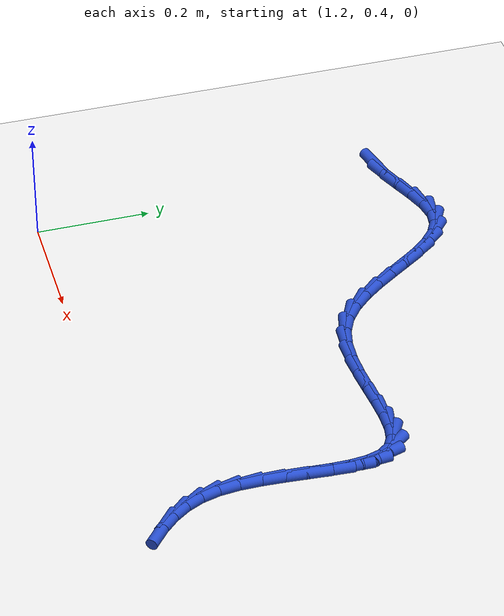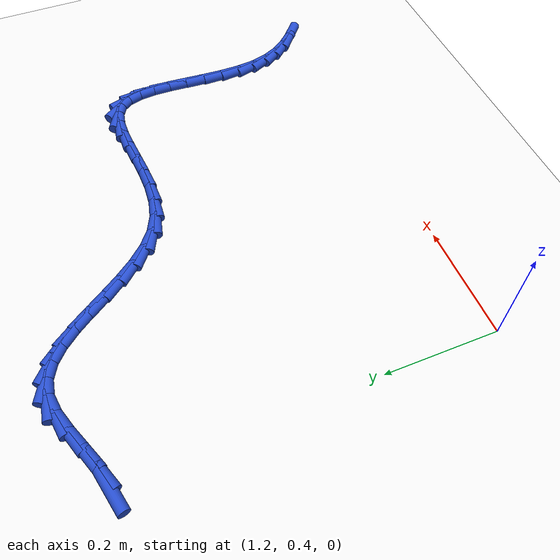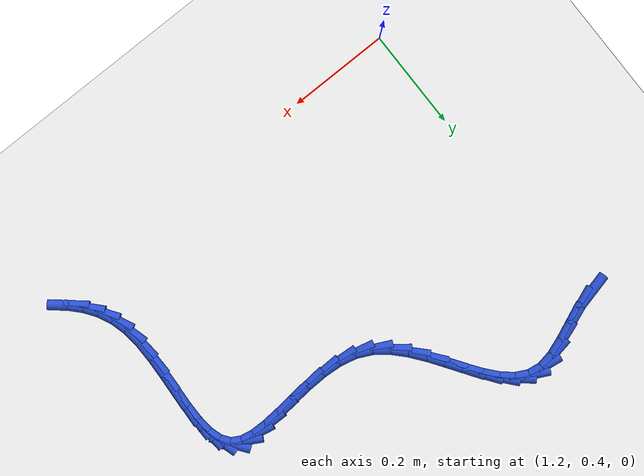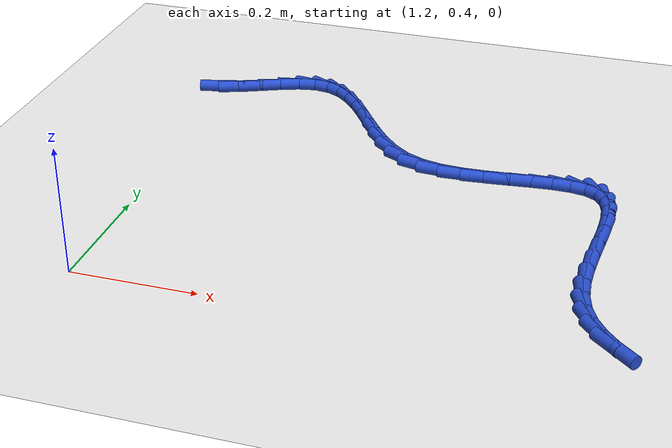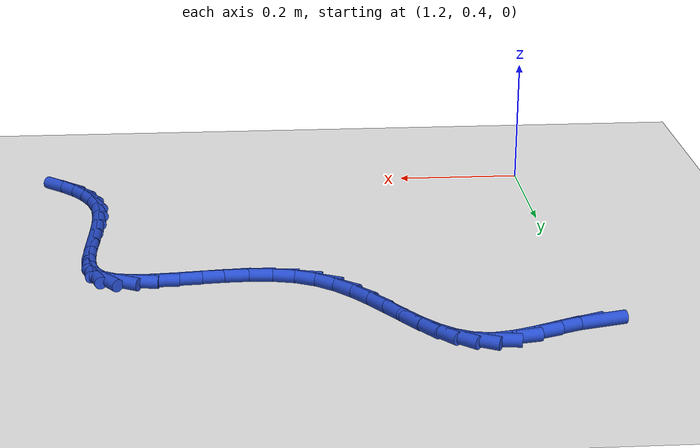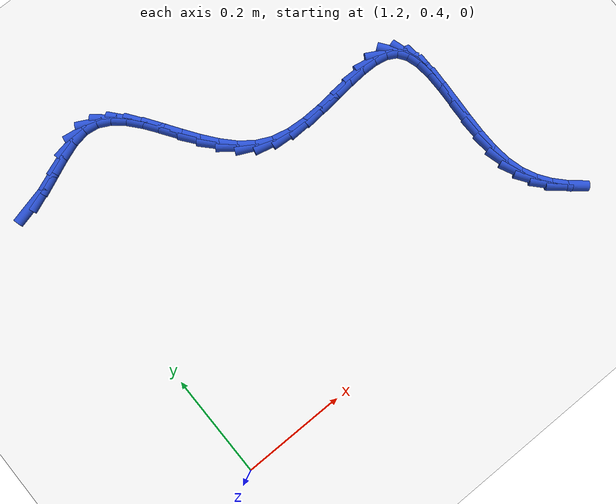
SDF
<sdf version="1.6">
 <world name="default">
  <model name="ground_plane">
   <static>1</static>
   <link name="link">
    <collision name="collision">
     <geometry><plane><normal>0 0 1</normal><size>100 100</size></plane></geometry>
     <surface><friction><ode><mu>100</mu><mu2>50</mu2></ode></friction></surface>
    </collision>
    <visual name="visual">
     <cast_shadows>0</cast_shadows>
     <geometry><plane><normal>0 0 1</normal><size>100 100</size></plane></geometry>
     <material>
      <script><uri>file://media/materials/scripts/gazebo.material</uri><name>Gazebo/WhiteGlow</name></script>
     </material>
    </visual>
   </link>
  </model>
  <model name="line">
   <link name="link_58">
    <pose>1.1863315612279193 1.02608378913244 0.01 0 1.57 0.2471443779884811</pose>
    <collision name="collision">
     <geometry><cylinder><radius>0.01</radius><length>0.08</length></cylinder></geometry>
    </collision>
    <visual name="visual">
     <material>
      <script><name>Gazebo/Blue</name><uri>file://media/materials/scripts/gazebo.material</uri></script>
     </material>
     <geometry><cylinder><radius>0.01</radius><length>0.08</length></cylinder></geometry>
    </visual>
   </link>
   <link name="link_59">
    <pose>1.2179585491378866 1.0340633516257896 0.01 0 1.57 0.37794571140664307</pose>
    <collision name="collision">
     <geometry><cylinder><radius>0.01</radius><length>0.08</length></cylinder></geometry>
    </collision>
    <visual name="visual">
     <material>
      <script><name>Gazebo/Blue</name><uri>file://media/materials/scripts/gazebo.material</uri></script>
     </material>
     <geometry><cylinder><radius>0.01</radius><length>0.08</length></cylinder></geometry>
    </visual>
   </link>
   <link name="link_60">
    <pose>1.251209522628642 1.0472650740997405 0.01 0 1.57 0.4084316908271969</pose>
    <collision name="collision">
     <geometry><cylinder><radius>0.01</radius><length>0.08</length></cylinder></geometry>
    </collision>
    <visual name="visual">
     <material>
      <script><name>Gazebo/Blue</name><uri>file://media/materials/scripts/gazebo.material</uri></script>
     </material>
     <geometry><cylinder><radius>0.01</radius><length>0.08</length></cylinder></geometry>
    </visual>
   </link>
   <link name="link_61">
    <pose>1.2848036581786273 1.0618035377173545 0.01 0 1.57 0.3518697404255531</pose>
    <collision name="collision">
     <geometry><cylinder><radius>0.01</radius><length>0.08</length></cylinder></geometry>
    </collision>
    <visual name="visual">
     <material>
      <script><name>Gazebo/Blue</name><uri>file://media/materials/scripts/gazebo.material</uri></script>
     </material>
     <geometry><cylinder><radius>0.01</radius><length>0.08</length></cylinder></geometry>
    </visual>
   </link>
   <link name="link_62">
    <pose>1.3174601322662831 1.073793323641692 0.01 0 1.57 0.1805374693753123</pose>
    <collision name="collision">
     <geometry><cylinder><radius>0.01</radius><length>0.08</length></cylinder></geometry>
    </collision>
    <visual name="visual">
     <material>
      <script><name>Gazebo/Blue</name><uri>file://media/materials/scripts/gazebo.material</uri></script>
     </material>
     <geometry><cylinder><radius>0.01</radius><length>0.08</length></cylinder></geometry>
    </visual>
   </link>
   <link name="link_63">
    <pose>1.347898121370051 1.079349013035815 0.01 0 1.57 -0.1399753026989773</pose>
    <collision name="collision">
     <geometry><cylinder><radius>0.01</radius><length>0.08</length></cylinder></geometry>
    </collision>
    <visual name="visual">
     <material>
      <script><name>Gazebo/Blue</name><uri>file://media/materials/scripts/gazebo.material</uri></script>
     </material>
     <geometry><cylinder><radius>0.01</radius><length>0.08</length></cylinder></geometry>
    </visual>
   </link>
   <link name="link_64">
    <pose>1.3751642141030875 1.0755073103481927 0.01 0 1.57 -0.47209147640019355</pose>
    <collision name="collision">
     <geometry><cylinder><radius>0.01</radius><length>0.08</length></cylinder></geometry>
    </collision>
    <visual name="visual">
     <material>
      <script><name>Gazebo/Blue</name><uri>file://media/materials/scripts/gazebo.material</uri></script>
     </material>
     <geometry><cylinder><radius>0.01</radius><length>0.08</length></cylinder></geometry>
    </visual>
   </link>
   <link name="link_65">
    <pose>1.3996235174089613 1.0630183940430478 0.01 0 1.57 -0.7161756071235347</pose>
    <collision name="collision">
     <geometry><cylinder><radius>0.01</radius><length>0.08</length></cylinder></geometry>
    </collision>
    <visual name="visual">
     <material>
      <script><name>Gazebo/Blue</name><uri>file://media/materials/scripts/gazebo.material</uri></script>
     </material>
     <geometry><cylinder><radius>0.01</radius><length>0.08</length></cylinder></geometry>
    </visual>
   </link>
   <link name="link_66">
    <pose>1.4219730002590492 1.0435670985455088 0.01 0 1.57 -0.868251299276987</pose>
    <collision name="collision">
     <geometry><cylinder><radius>0.01</radius><length>0.08</length></cylinder></geometry>
    </collision>
    <visual name="visual">
     <material>
      <script><name>Gazebo/Blue</name><uri>file://media/materials/scripts/gazebo.material</uri></script>
     </material>
     <geometry><cylinder><radius>0.01</radius><length>0.08</length></cylinder></geometry>
    </visual>
   </link>
   <link name="link_67">
    <pose>1.4429096316284817 1.0188382582912772 0.01 0 1.57 -0.9507556594779019</pose>
    <collision name="collision">
     <geometry><cylinder><radius>0.01</radius><length>0.08</length></cylinder></geometry>
    </collision>
    <visual name="visual">
     <material>
      <script><name>Gazebo/Blue</name><uri>file://media/materials/scripts/gazebo.material</uri></script>
     </material>
     <geometry><cylinder><radius>0.01</radius><length>0.08</length></cylinder></geometry>
    </visual>
   </link>
   <link name="link_68">
    <pose>1.463130380492391 0.9905167077160554 0.01 0 1.57 -0.9816750197854265</pose>
    <collision name="collision">
     <geometry><cylinder><radius>0.01</radius><length>0.08</length></cylinder></geometry>
    </collision>
    <visual name="visual">
     <material>
      <script><name>Gazebo/Blue</name><uri>file://media/materials/scripts/gazebo.material</uri></script>
     </material>
     <geometry><cylinder><radius>0.01</radius><length>0.08</length></cylinder></geometry>
    </visual>
   </link>
   <link name="link_69">
    <pose>1.4833322158259066 0.9602872812555447 0.01 0 1.57 -0.9697628112660459</pose>
    <collision name="collision">
     <geometry><cylinder><radius>0.01</radius><length>0.08</length></cylinder></geometry>
    </collision>
    <visual name="visual">
     <material>
      <script><name>Gazebo/Blue</name><uri>file://media/materials/scripts/gazebo.material</uri></script>
     </material>
     <geometry><cylinder><radius>0.01</radius><length>0.08</length></cylinder></geometry>
    </visual>
   </link>
   <link name="link_70">
    <pose>1.5042121066041605 0.9298348133454466 0.01 0 1.57 -0.916089729334342</pose>
    <collision name="collision">
     <geometry><cylinder><radius>0.01</radius><length>0.08</length></cylinder></geometry>
    </collision>
    <visual name="visual">
     <material>
      <script><name>Gazebo/Blue</name><uri>file://media/materials/scripts/gazebo.material</uri></script>
     </material>
     <geometry><cylinder><radius>0.01</radius><length>0.08</length></cylinder></geometry>
    </visual>
   </link>
   <link name="link_71">
    <pose>1.526467021802283 0.9008441384214636 0.01 0 1.57 -0.8156283373136515</pose>
    <collision name="collision">
     <geometry><cylinder><radius>0.01</radius><length>0.08</length></cylinder></geometry>
    </collision>
    <visual name="visual">
     <material>
      <script><name>Gazebo/Blue</name><uri>file://media/materials/scripts/gazebo.material</uri></script>
     </material>
     <geometry><cylinder><radius>0.01</radius><length>0.08</length></cylinder></geometry>
    </visual>
   </link>
   <link name="link_72">
    <pose>1.5507939303954066 0.8750000909192971 0.01 0 1.57 -0.6596163259711672</pose>
    <collision name="collision">
     <geometry><cylinder><radius>0.01</radius><length>0.08</length></cylinder></geometry>
    </collision>
    <visual name="visual">
     <material>
      <script><name>Gazebo/Blue</name><uri>file://media/materials/scripts/gazebo.material</uri></script>
     </material>
     <geometry><cylinder><radius>0.01</radius><length>0.08</length></cylinder></geometry>
    </visual>
   </link>
   <link name="link_73">
    <pose>1.5778898013586602 0.853987505274649 0.01 0 1.57 -0.44394770466640393</pose>
    <collision name="collision">
     <geometry><cylinder><radius>0.01</radius><length>0.08</length></cylinder></geometry>
    </collision>
    <visual name="visual">
     <material>
      <script><name>Gazebo/Blue</name><uri>file://media/materials/scripts/gazebo.material</uri></script>
     </material>
     <geometry><cylinder><radius>0.01</radius><length>0.08</length></cylinder></geometry>
    </visual>
   </link>
   <link name="link_74">
    <pose>1.6084341745174344 0.8394602292639407 0.01 0 1.57 -0.22387205608642938</pose>
    <collision name="collision">
     <geometry><cylinder><radius>0.01</radius><length>0.08</length></cylinder></geometry>
    </collision>
    <visual name="visual">
     <material>
      <script><name>Gazebo/Blue</name><uri>file://media/materials/scripts/gazebo.material</uri></script>
     </material>
     <geometry><cylinder><radius>0.01</radius><length>0.08</length></cylinder></geometry>
    </visual>
   </link>
   <link name="link_75">
    <pose>1.6423554767266062 0.8317367338929299 0.01 0 1.57 -0.0666202240007269</pose>
    <collision name="collision">
     <geometry><cylinder><radius>0.01</radius><length>0.08</length></cylinder></geometry>
    </collision>
    <visual name="visual">
     <material>
      <script><name>Gazebo/Blue</name><uri>file://media/materials/scripts/gazebo.material</uri></script>
     </material>
     <geometry><cylinder><radius>0.01</radius><length>0.08</length></cylinder></geometry>
    </visual>
   </link>
   <link name="link_76">
    <pose>1.6785615897689494 0.8293210997411536 0.01 0 1.57 0.03392286765551408</pose>
    <collision name="collision">
     <geometry><cylinder><radius>0.01</radius><length>0.08</length></cylinder></geometry>
    </collision>
    <visual name="visual">
     <material>
      <script><name>Gazebo/Blue</name><uri>file://media/materials/scripts/gazebo.material</uri></script>
     </material>
     <geometry><cylinder><radius>0.01</radius><length>0.08</length></cylinder></geometry>
    </visual>
   </link>
   <link name="link_77">
    <pose>1.715887487585417 0.8305877871549887 0.01 0 1.57 0.0889122468340188</pose>
    <collision name="collision">
     <geometry><cylinder><radius>0.01</radius><length>0.08</length></cylinder></geometry>
    </collision>
    <visual name="visual">
     <material>
      <script><name>Gazebo/Blue</name><uri>file://media/materials/scripts/gazebo.material</uri></script>
     </material>
     <geometry><cylinder><radius>0.01</radius><length>0.08</length></cylinder></geometry>
    </visual>
   </link>
   <link name="link_78">
    <pose>1.7531681441169602 0.8339112564808119 0.01 0 1.57 0.10372046676868281</pose>
    <collision name="collision">
     <geometry><cylinder><radius>0.01</radius><length>0.08</length></cylinder></geometry>
    </collision>
    <visual name="visual">
     <material>
      <script><name>Gazebo/Blue</name><uri>file://media/materials/scripts/gazebo.material</uri></script>
     </material>
     <geometry><cylinder><radius>0.01</radius><length>0.08</length></cylinder></geometry>
    </visual>
   </link>
   <link name="link_79">
    <pose>1.7892385333045326 0.8376659680650003 0.01 0 1.57 0.07584199041458527</pose>
    <collision name="collision">
     <geometry><cylinder><radius>0.01</radius><length>0.08</length></cylinder></geometry>
    </collision>
    <visual name="visual">
     <material>
      <script><name>Gazebo/Blue</name><uri>file://media/materials/scripts/gazebo.material</uri></script>
     </material>
     <geometry><cylinder><radius>0.01</radius><length>0.08</length></cylinder></geometry>
    </visual>
   </link>
   <link name="link_80">
    <pose>1.8229336290890852 0.8402263822539309 0.01 0 1.57 -0.008602831514804603</pose>
    <collision name="collision">
     <geometry><cylinder><radius>0.01</radius><length>0.08</length></cylinder></geometry>
    </collision>
    <visual name="visual">
     <material>
      <script><name>Gazebo/Blue</name><uri>file://media/materials/scripts/gazebo.material</uri></script>
     </material>
     <geometry><cylinder><radius>0.01</radius><length>0.08</length></cylinder></geometry>
    </visual>
   </link>
   <link name="link_81">
    <pose>1.8530884054115713 0.8399669593939799 0.01 0 1.57 -0.18280467053499722</pose>
    <collision name="collision">
     <geometry><cylinder><radius>0.01</radius><length>0.08</length></cylinder></geometry>
    </collision>
    <visual name="visual">
     <material>
      <script><name>Gazebo/Blue</name><uri>file://media/materials/scripts/gazebo.material</uri></script>
     </material>
     <geometry><cylinder><radius>0.01</radius><length>0.08</length></cylinder></geometry>
    </visual>
   </link>
   <link name="link_82">
    <pose>1.878537836212942 0.8352621598315247 0.01 0 1.57 -0.5031268081582867</pose>
    <collision name="collision">
     <geometry><cylinder><radius>0.01</radius><length>0.08</length></cylinder></geometry>
    </collision>
    <visual name="visual">
     <material>
      <script><name>Gazebo/Blue</name><uri>file://media/materials/scripts/gazebo.material</uri></script>
     </material>
     <geometry><cylinder><radius>0.01</radius><length>0.08</length></cylinder></geometry>
    </visual>
   </link>
   <link name="link_83">
    <pose>1.8981168954341505 0.8244864439129419 0.01 0 1.57 -0.9474128085223126</pose>
    <collision name="collision">
     <geometry><cylinder><radius>0.01</radius><length>0.08</length></cylinder></geometry>
    </collision>
    <visual name="visual">
     <material>
      <script><name>Gazebo/Blue</name><uri>file://media/materials/scripts/gazebo.material</uri></script>
     </material>
     <geometry><cylinder><radius>0.01</radius><length>0.08</length></cylinder></geometry>
    </visual>
   </link>
   <link name="link_84">
    <pose>1.911062301026348 0.806482442962915 0.01 0 1.57 -1.2846837851249824</pose>
    <collision name="collision">
     <geometry><cylinder><radius>0.01</radius><length>0.08</length></cylinder></geometry>
    </collision>
    <visual name="visual">
     <material>
      <script><name>Gazebo/Blue</name><uri>file://media/materials/scripts/gazebo.material</uri></script>
     </material>
     <geometry><cylinder><radius>0.01</radius><length>0.08</length></cylinder></geometry>
    </visual>
   </link>
   <link name="link_85">
    <pose>1.9182602360137622 0.7820149866646285 0.01 0 1.57 -1.4780516273009443</pose>
    <collision name="collision">
     <geometry><cylinder><radius>0.01</radius><length>0.08</length></cylinder></geometry>
    </collision>
    <visual name="visual">
     <material>
      <script><name>Gazebo/Blue</name><uri>file://media/materials/scripts/gazebo.material</uri></script>
     </material>
     <geometry><cylinder><radius>0.01</radius><length>0.08</length></cylinder></geometry>
    </visual>
   </link>
   <link name="link_86">
    <pose>1.921020151301457 0.7523421584470044 0.01 0 1.57 1.5598315086767613</pose>
    <collision name="collision">
     <geometry><cylinder><radius>0.01</radius><length>0.08</length></cylinder></geometry>
    </collision>
    <visual name="visual">
     <material>
      <script><name>Gazebo/Blue</name><uri>file://media/materials/scripts/gazebo.material</uri></script>
     </material>
     <geometry><cylinder><radius>0.01</radius><length>0.08</length></cylinder></geometry>
    </visual>
   </link>
   <link name="link_87">
    <pose>1.9206514980659397 0.7187220420552856 0.01 0 1.57 1.5106153949338708</pose>
    <collision name="collision">
     <geometry><cylinder><radius>0.01</radius><length>0.08</length></cylinder></geometry>
    </collision>
    <visual name="visual">
     <material>
      <script><name>Gazebo/Blue</name><uri>file://media/materials/scripts/gazebo.material</uri></script>
     </material>
     <geometry><cylinder><radius>0.01</radius><length>0.08</length></cylinder></geometry>
    </visual>
   </link>
   <link name="link_88">
    <pose>1.9184637274837164 0.6824127212347161 0.01 0 1.57 1.4994442853733567</pose>
    <collision name="collision">
     <geometry><cylinder><radius>0.01</radius><length>0.08</length></cylinder></geometry>
    </collision>
    <visual name="visual">
     <material>
      <script><name>Gazebo/Blue</name><uri>file://media/materials/scripts/gazebo.material</uri></script>
     </material>
     <geometry><cylinder><radius>0.01</radius><length>0.08</length></cylinder></geometry>
    </visual>
   </link>
   <link name="link_89">
    <pose>1.9157662907312945 0.644672279730541 0.01 0 1.57 1.5207858945227624</pose>
    <collision name="collision">
     <geometry><cylinder><radius>0.01</radius><length>0.08</length></cylinder></geometry>
    </collision>
    <visual name="visual">
     <material>
      <script><name>Gazebo/Blue</name><uri>file://media/materials/scripts/gazebo.material</uri></script>
     </material>
     <geometry><cylinder><radius>0.01</radius><length>0.08</length></cylinder></geometry>
    </visual>
   </link>
   <link name="link_90">
    <pose>1.9138686389851793 0.606758801288003 0.01 0 1.57 -1.5650512516056385</pose>
    <collision name="collision">
     <geometry><cylinder><radius>0.01</radius><length>0.08</length></cylinder></geometry>
    </collision>
    <visual name="visual">
     <material>
      <script><name>Gazebo/Blue</name><uri>file://media/materials/scripts/gazebo.material</uri></script>
     </material>
     <geometry><cylinder><radius>0.01</radius><length>0.08</length></cylinder></geometry>
    </visual>
   </link>
   <link name="link_91">
    <pose>1.914080223421878 0.569930369652347 0.01 0 1.57 -1.4659125018966541</pose>
    <collision name="collision">
     <geometry><cylinder><radius>0.01</radius><length>0.08</length></cylinder></geometry>
    </collision>
    <visual name="visual">
     <material>
      <script><name>Gazebo/Blue</name><uri>file://media/materials/scripts/gazebo.material</uri></script>
     </material>
     <geometry><cylinder><radius>0.01</radius><length>0.08</length></cylinder></geometry>
    </visual>
   </link>
   <link name="link_92">
    <pose>1.9177104952178963 0.5354450685688162 0.01 0 1.57 -1.311523760139612</pose>
    <collision name="collision">
     <geometry><cylinder><radius>0.01</radius><length>0.08</length></cylinder></geometry>
    </collision>
    <visual name="visual">
     <material>
      <script><name>Gazebo/Blue</name><uri>file://media/materials/scripts/gazebo.material</uri></script>
     </material>
     <geometry><cylinder><radius>0.01</radius><length>0.08</length></cylinder></geometry>
    </visual>
   </link>
   <link name="link_93">
    <pose>1.9259359212839897 0.5044341356577067 0.01 0 1.57 -1.1335220637949914</pose>
    <collision name="collision">
     <geometry><cylinder><radius>0.01</radius><length>0.08</length></cylinder></geometry>
    </collision>
    <visual name="visual">
     <material>
      <script><name>Gazebo/Blue</name><uri>file://media/materials/scripts/gazebo.material</uri></script>
     </material>
     <geometry><cylinder><radius>0.01</radius><length>0.08</length></cylinder></geometry>
    </visual>
   </link>
   <link name="link_94">
    <pose>1.9387892025451416 0.47693783524015204 0.01 0 1.57 -0.966058981447604</pose>
    <collision name="collision">
     <geometry><cylinder><radius>0.01</radius><length>0.08</length></cylinder></geometry>
    </collision>
    <visual name="visual">
     <material>
      <script><name>Gazebo/Blue</name><uri>file://media/materials/scripts/gazebo.material</uri></script>
     </material>
     <geometry><cylinder><radius>0.01</radius><length>0.08</length></cylinder></geometry>
    </visual>
   </link>
   <link name="link_95">
    <pose>1.9557198749462772 0.4524401837420339 0.01 0 1.57 -0.8222636181278663</pose>
    <collision name="collision">
     <geometry><cylinder><radius>0.01</radius><length>0.08</length></cylinder></geometry>
    </collision>
    <visual name="visual">
     <material>
      <script><name>Gazebo/Blue</name><uri>file://media/materials/scripts/gazebo.material</uri></script>
     </material>
     <geometry><cylinder><radius>0.01</radius><length>0.08</length></cylinder></geometry>
    </visual>
   </link>
   <link name="link_96">
    <pose>1.9761728239504357 0.4304207617591501 0.01 0 1.57 -0.7083118858086797</pose>
    <collision name="collision">
     <geometry><cylinder><radius>0.01</radius><length>0.08</length></cylinder></geometry>
    </collision>
    <visual name="visual">
     <material>
      <script><name>Gazebo/Blue</name><uri>file://media/materials/scripts/gazebo.material</uri></script>
     </material>
     <geometry><cylinder><radius>0.01</radius><length>0.08</length></cylinder></geometry>
    </visual>
   </link>
  </model>
 </world>
</sdf>
